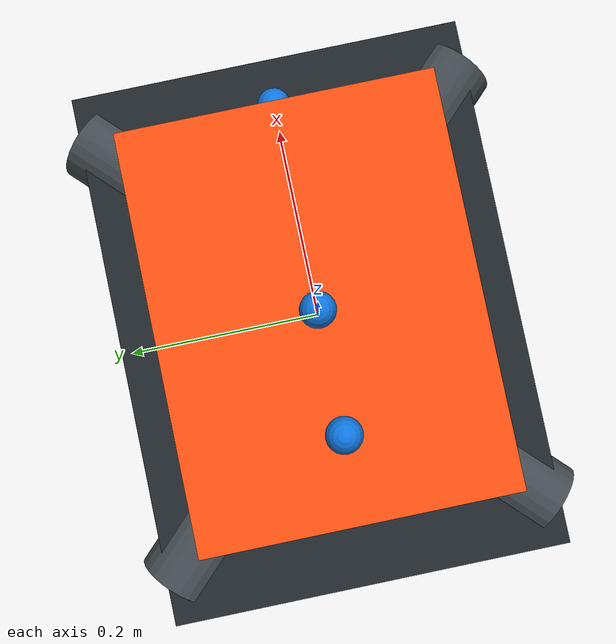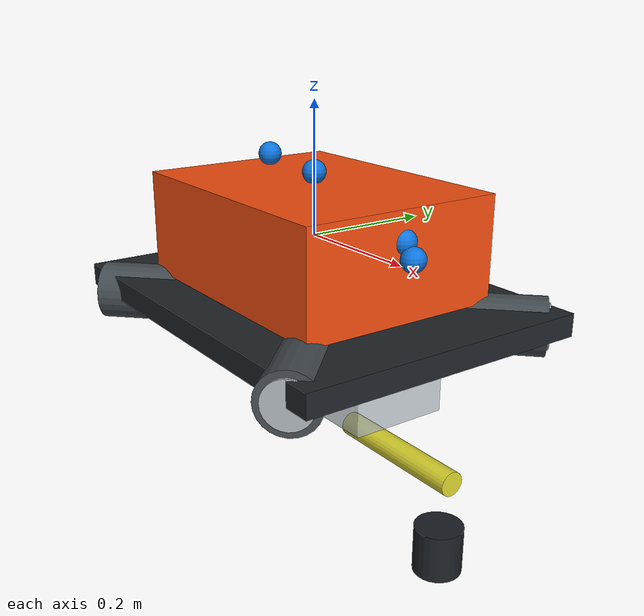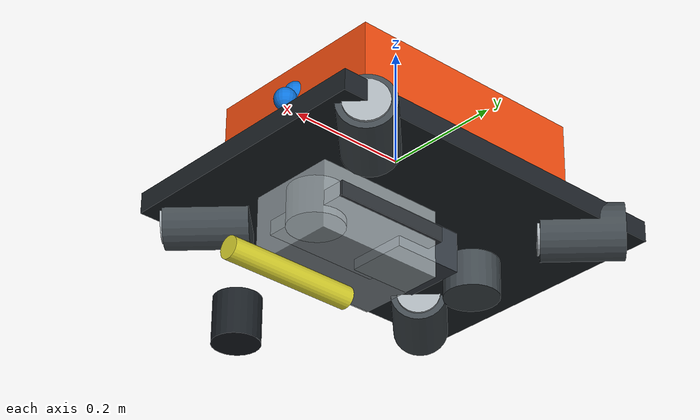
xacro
<?xml version="1.0"?>
<robot xmlns:xacro="http://www.ros.org/wiki/xacro" name="sediment_collector_rov">
  <xacro:arg name="use_sim" default="true"/>
  <xacro:include filename="$(find rov_description)/urdf/rov_base.xacro"/>
  <xacro:include filename="$(find rov_description)/urdf/thrusters.xacro"/>
  <xacro:include filename="$(find rov_description)/urdf/sensors.xacro"/>
  <xacro:include filename="$(find rov_description)/urdf/sediment_collection.xacro"/>

  <xacro:rov_base/>
  <xacro:rov_thrusters/>
  <xacro:rov_sensors/>
  <xacro:sediment_sampler/>

  <!-- Gazebo Harmonic model-level hydrodynamic damping. Coefficients are initial tuning values,
       not experimentally identified vehicle coefficients. -->
  <gazebo>
    <plugin filename="gz-sim-hydrodynamics-system" name="gz::sim::systems::Hydrodynamics">
      <link_name>base_link</link_name>
      <xUabsU>-0.8</xUabsU><xU>-4.0</xU>
      <yVabsV>-1.8</yVabsV><yV>-6.0</yV>
      <zWabsW>-4.0</zWabsW><zW>-8.0</zW>
      <kPabsP>-0.15</kPabsP><kP>-0.8</kP>
      <mQabsQ>-0.15</mQabsQ><mQ>-0.8</mQ>
      <nRabsR>-0.20</nRabsR><nR>-1.0</nR>
    </plugin>
  </gazebo>
</robot>

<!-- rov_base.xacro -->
<robot xmlns:xacro="http://www.ros.org/wiki/xacro">
  <xacro:macro name="box_inertial" params="mass x y z origin_z:=0">
    <inertial>
      <mass value="${mass}"/>
      <origin xyz="0 0 ${origin_z}" rpy="0 0 0"/>
      <inertia ixx="${mass*(y*y+z*z)/12.0}" ixy="0" ixz="0"
               iyy="${mass*(x*x+z*z)/12.0}" iyz="0"
               izz="${mass*(x*x+y*y)/12.0}"/>
    </inertial>
  </xacro:macro>

  <xacro:macro name="rov_base">
    <link name="base_link">
      <visual>
        <origin xyz="0 0 0" rpy="0 0 0"/>
        <geometry><box size="0.42 0.32 0.16"/></geometry>
        <material name="rov_orange"><color rgba="0.95 0.30 0.06 1"/></material>
      </visual>
      <!-- Smaller watertight enclosure collision: visual dimensions are not the displaced volume. -->
      <collision name="pressure_hull_collision">
        <origin xyz="0 0 0" rpy="0 0 0"/>
        <geometry><box size="0.32 0.22 0.12"/></geometry>
      </collision>
      <!-- Low battery/payload center keeps the buoyant hull upright in the water. -->
      <xacro:box_inertial mass="16.27" x="0.42" y="0.32" z="0.16" origin_z="-0.12"/>
    </link>

    <link name="frame_link">
      <visual>
        <geometry><box size="0.62 0.46 0.035"/></geometry>
        <material name="frame_black"><color rgba="0.12 0.14 0.16 1"/></material>
      </visual>
      <!-- Four bars approximate an open frame; a solid bounding-box collision overestimates displacement. -->
      <collision name="front_frame_bar">
        <origin xyz="0 0.2125 0" rpy="0 0 0"/>
        <geometry><box size="0.62 0.035 0.035"/></geometry>
      </collision>
      <collision name="rear_frame_bar">
        <origin xyz="0 -0.2125 0" rpy="0 0 0"/>
        <geometry><box size="0.62 0.035 0.035"/></geometry>
      </collision>
      <collision name="left_frame_bar">
        <origin xyz="0.2925 0 0" rpy="0 0 0"/>
        <geometry><box size="0.035 0.39 0.035"/></geometry>
      </collision>
      <collision name="right_frame_bar">
        <origin xyz="-0.2925 0 0" rpy="0 0 0"/>
        <geometry><box size="0.035 0.39 0.035"/></geometry>
      </collision>
      <xacro:box_inertial mass="2.0" x="0.62" y="0.46" z="0.035"/>
    </link>
    <joint name="frame_fixed_joint" type="fixed">
      <parent link="base_link"/><child link="frame_link"/>
      <origin xyz="0 0 -0.10" rpy="0 0 0"/>
    </joint>
  </xacro:macro>
</robot>

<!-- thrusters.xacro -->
<robot xmlns:xacro="http://www.ros.org/wiki/xacro">
  <xacro:macro name="thruster" params="name xyz rpy">
    <link name="${name}_link">
      <visual><geometry><cylinder radius="0.045" length="0.13"/></geometry>
        <material name="thruster_grey"><color rgba="0.25 0.28 0.30 1"/></material>
      </visual>
      <collision><geometry><box size="0.0707 0.09 0.13"/></geometry></collision>
      <inertial><mass value="0.35"/><inertia ixx="0.001" ixy="0" ixz="0" iyy="0.001" iyz="0" izz="0.001"/></inertial>
    </link>
    <joint name="${name}_fixed_joint" type="fixed">
      <parent link="frame_link"/><child link="${name}_link"/>
      <origin xyz="${xyz}" rpy="${rpy}"/>
    </joint>

    <!-- Propeller shaft. The local +Z joint axis is rotated into each thruster's thrust direction. -->
    <link name="${name}_propeller_link">
      <visual><geometry><cylinder radius="0.035" length="0.008"/></geometry>
        <material name="propeller_grey"><color rgba="0.65 0.68 0.70 1"/></material>
      </visual>
      <inertial><mass value="0.03"/><inertia ixx="0.00002" ixy="0" ixz="0" iyy="0.00002" iyz="0" izz="0.00002"/></inertial>
    </link>
    <joint name="${name}_propeller_joint" type="continuous">
      <parent link="${name}_link"/><child link="${name}_propeller_link"/>
      <origin xyz="0 0 0.065" rpy="0 0 0"/>
      <axis xyz="0 0 1"/>
    </joint>

    <!-- Gazebo Harmonic native maritime thruster system: command is thrust in Newtons. -->
    <gazebo>
      <plugin filename="gz-sim-thruster-system" name="gz::sim::systems::Thruster">
        <namespace>sediment_collector_rov</namespace>
        <joint_name>${name}_propeller_joint</joint_name>
        <fluid_density>1025</fluid_density>
        <propeller_diameter>0.07</propeller_diameter>
        <thrust_coefficient>1.0</thrust_coefficient>
      </plugin>
    </gazebo>
  </xacro:macro>

  <xacro:macro name="rov_thrusters">
    <!-- Four horizontal vectored thrusters. RPY rotates local +Z into the XY plane. -->
    <xacro:thruster name="front_left_thruster"  xyz="0.22 0.18 -0.015" rpy="0 1.5707963 0.7853982"/>
    <xacro:thruster name="front_right_thruster" xyz="0.22 -0.18 -0.015" rpy="0 1.5707963 -0.7853982"/>
    <xacro:thruster name="rear_left_thruster"   xyz="-0.22 0.18 -0.015" rpy="0 1.5707963 -0.7853982"/>
    <xacro:thruster name="rear_right_thruster"  xyz="-0.22 -0.18 -0.015" rpy="0 1.5707963 0.7853982"/>
    <!-- Two vertical thrusters: heave and pitch control. This 6-thruster layout does not independently control roll. -->
    <xacro:thruster name="vertical_front_thruster" xyz="0.16 0 -0.015" rpy="0 0 0"/>
    <xacro:thruster name="vertical_rear_thruster"  xyz="-0.16 0 -0.015" rpy="0 0 0"/>
  </xacro:macro>
</robot>

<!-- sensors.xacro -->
<robot xmlns:xacro="http://www.ros.org/wiki/xacro">
  <xacro:macro name="sensor_frame" params="name xyz rpy">
    <link name="${name}">
      <visual><geometry><sphere radius="0.018"/></geometry>
        <material name="sensor_blue"><color rgba="0.05 0.45 0.85 1"/></material>
      </visual>
      <inertial><mass value="0.02"/><inertia ixx="0.00001" ixy="0" ixz="0" iyy="0.00001" iyz="0" izz="0.00001"/></inertial>
    </link>
    <joint name="${name}_mount_joint" type="fixed">
      <parent link="base_link"/><child link="${name}"/>
      <origin xyz="${xyz}" rpy="${rpy}"/>
    </joint>
  </xacro:macro>

  <xacro:macro name="rov_sensors">
    <xacro:sensor_frame name="camera_link" xyz="0.225 0 0.015" rpy="0 0 0"/>
    <xacro:sensor_frame name="forward_sonar_link" xyz="0.205 0 0.035" rpy="0 0 0"/>
    <xacro:sensor_frame name="imu_link" xyz="0 0 0.095" rpy="0 0 0"/>
    <xacro:sensor_frame name="pressure_sensor_link" xyz="-0.12 0 0.105" rpy="0 0 0"/>
    <xacro:sensor_frame name="leak_sensor_link" xyz="0 0 -0.065" rpy="0 0 0"/>
  </xacro:macro>
</robot>

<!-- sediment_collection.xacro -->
<robot xmlns:xacro="http://www.ros.org/wiki/xacro">
  <xacro:macro name="payload_box" params="name size mass rgba">
    <link name="${name}">
      <visual><geometry><box size="${size}"/></geometry>
        <material name="${name}_mat"><color rgba="${rgba}"/></material>
      </visual>
      <collision><geometry><box size="${size}"/></geometry></collision>
      <inertial><mass value="${mass}"/>
        <inertia ixx="0.001" ixy="0" ixz="0" iyy="0.001" iyz="0" izz="0.001"/>
      </inertial>
    </link>
  </xacro:macro>

  <xacro:macro name="sediment_sampler">
    <link name="collection_mount_link">
      <visual><geometry><box size="0.20 0.16 0.025"/></geometry>
        <material name="mount_mat"><color rgba="0.18 0.20 0.22 1"/></material>
      </visual>
      <collision><geometry><box size="0.20 0.16 0.025"/></geometry></collision>
      <inertial><mass value="0.25"/><inertia ixx="0.001" ixy="0" ixz="0" iyy="0.001" iyz="0" izz="0.001"/></inertial>
    </link>
    <joint name="collection_mount_joint" type="fixed">
      <parent link="frame_link"/><child link="collection_mount_link"/>
      <origin xyz="0.08 0 -0.055" rpy="0 0 0"/>
    </joint>

    <xacro:payload_box name="pump_link" size="0.12 0.10 0.09" mass="0.65" rgba="0.22 0.25 0.28 1"/>
    <joint name="pump_fixed_joint" type="fixed">
      <parent link="collection_mount_link"/><child link="pump_link"/>
      <origin xyz="-0.10 0 0.015" rpy="0 0 0"/>
    </joint>

    <xacro:payload_box name="sediment_tank_link" size="0.22 0.15 0.12" mass="1.0" rgba="0.72 0.76 0.78 0.75"/>
    <joint name="sediment_tank_fixed_joint" type="fixed">
      <parent link="collection_mount_link"/><child link="sediment_tank_link"/>
      <origin xyz="0.02 0 -0.015" rpy="0 0 0"/>
    </joint>

    <link name="suction_pipe_link">
      <visual><geometry><cylinder radius="0.018" length="0.22"/></geometry>
        <material name="pipe_mat"><color rgba="0.85 0.82 0.18 1"/></material>
      </visual>
      <collision><geometry><box size="0.033 0.033 0.2055"/></geometry></collision>
      <inertial><mass value="0.08"/><inertia ixx="0.0001" ixy="0" ixz="0" iyy="0.0001" iyz="0" izz="0.0001"/></inertial>
    </link>
    <joint name="suction_pipe_fixed_joint" type="fixed">
      <parent link="collection_mount_link"/><child link="suction_pipe_link"/>
      <origin xyz="0.13 0 -0.12" rpy="0 1.5708 0"/>
    </joint>

    <link name="collection_nozzle_link">
      <visual><geometry><cylinder radius="0.035" length="0.07"/></geometry>
        <material name="nozzle_mat"><color rgba="0.10 0.12 0.14 1"/></material>
      </visual>
      <collision><geometry><box size="0.064 0.064 0.0658"/></geometry></collision>
      <inertial><mass value="0.12"/><inertia ixx="0.0001" ixy="0" ixz="0" iyy="0.0001" iyz="0" izz="0.0001"/></inertial>
    </link>
    <joint name="collection_nozzle_fixed_joint" type="fixed">
      <parent link="collection_mount_link"/><child link="collection_nozzle_link"/>
      <origin xyz="0.22 0 -0.23" rpy="0 0 0"/>
    </joint>

    <link name="collection_pressure_link">
      <inertial><mass value="0.01"/><inertia ixx="0.000001" ixy="0" ixz="0" iyy="0.000001" iyz="0" izz="0.000001"/></inertial>
    </link>
    <joint name="collection_pressure_mount_joint" type="fixed">
      <parent link="collection_mount_link"/><child link="collection_pressure_link"/>
      <origin xyz="-0.02 0.06 0.02" rpy="0 0 0"/>
    </joint>
    <link name="collection_flow_link">
      <inertial><mass value="0.01"/><inertia ixx="0.000001" ixy="0" ixz="0" iyy="0.000001" iyz="0" izz="0.000001"/></inertial>
    </link>
    <joint name="collection_flow_mount_joint" type="fixed">
      <parent link="collection_mount_link"/><child link="collection_flow_link"/>
      <origin xyz="0.04 0.06 0.02" rpy="0 0 0"/>
    </joint>
  </xacro:macro>
</robot>
